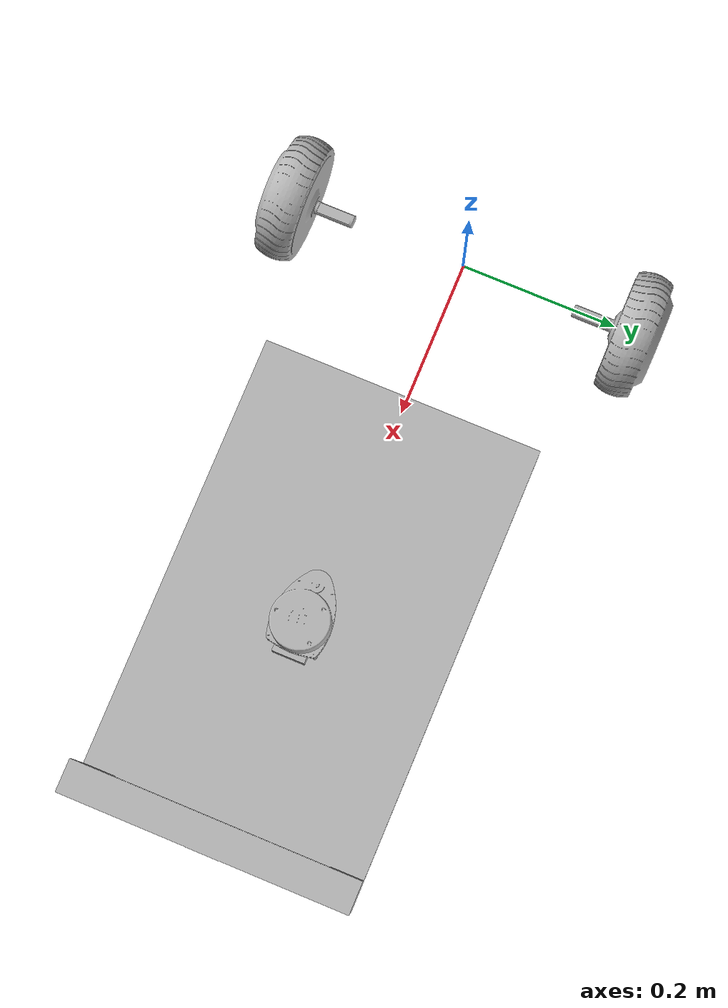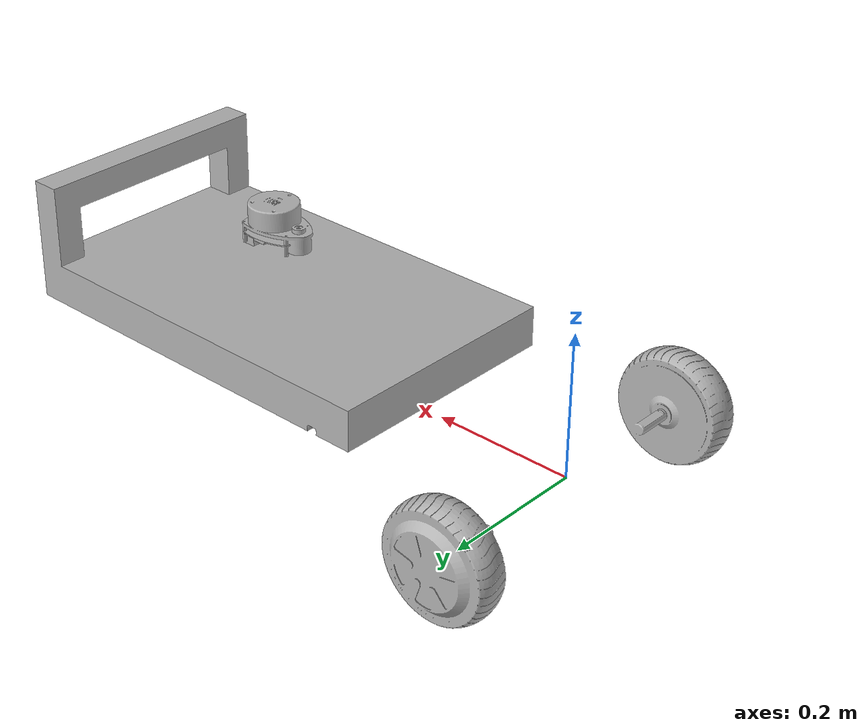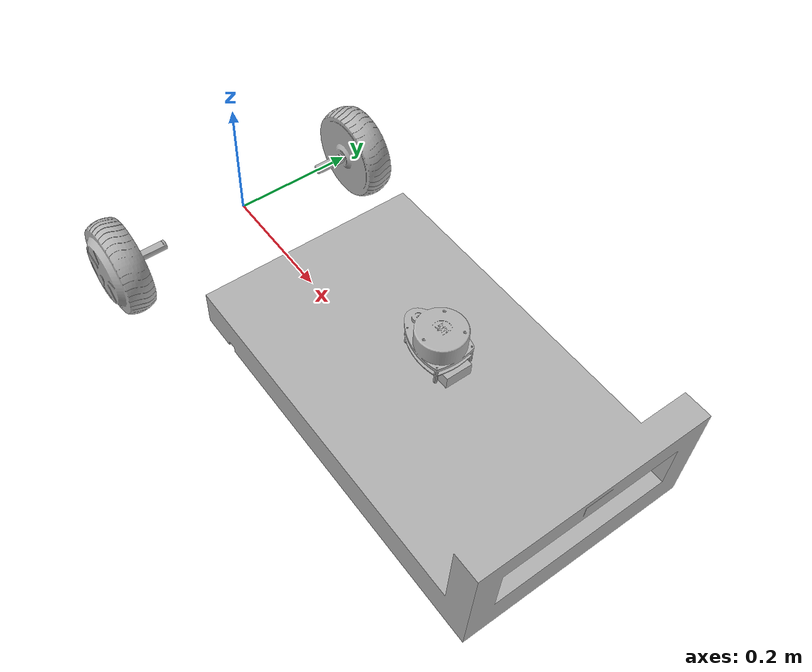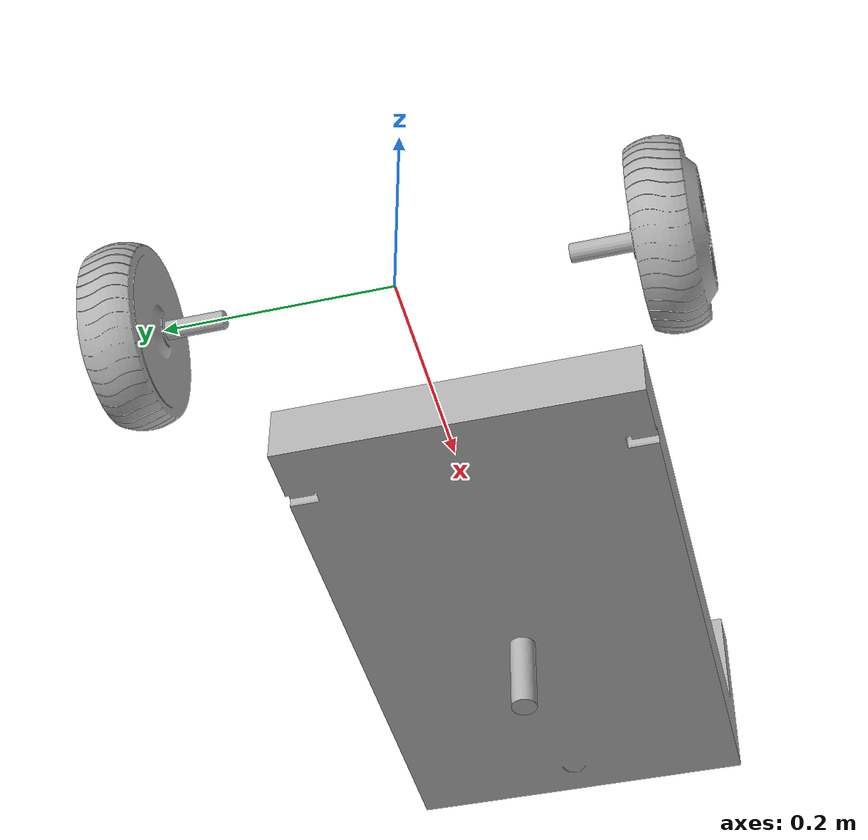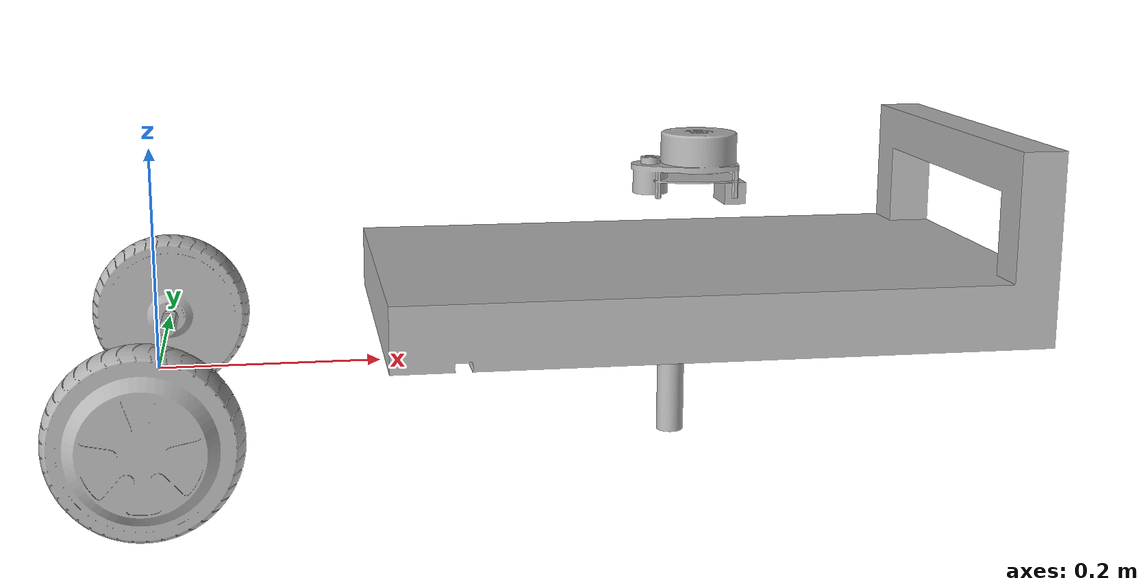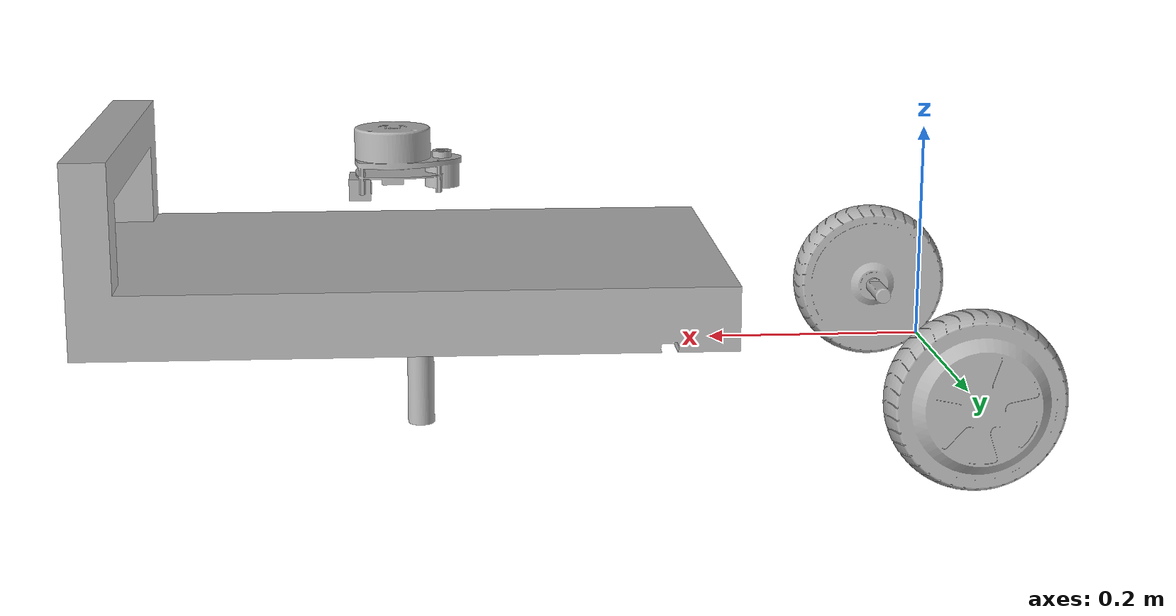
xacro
<?xml version="1.0" ?>
<robot name="mybot" xmlns:xacro="http://www.ros.org/wiki/xacro">

<xacro:include filename="$(find mybot_description)/urdf/materials.xacro" />
<xacro:include filename="$(find mybot_description)/urdf/mybot.trans" />
<xacro:include filename="$(find mybot_description)/urdf/mybot.gazebo" />
<!-- BASE LINK -->

    <link name="base_link">

    </link>

    <!-- BASE_FOOTPRINT LINK -->

    <joint name="base_footprint_joint" type="fixed">
        <parent link="base_link"/>
        <child link="base_footprint"/>
        <origin xyz="0 0 0" rpy="0 0 0"/>
    </joint>

    <link name="base_footprint">
    </link>

<joint name="chassis_joint" type="fixed">
        <parent link="base_link"/>
        <child link="chassis"/>
        <origin xyz="0.25839885705674864 2.0307340956054744e-17 0.03695407073761257"/>
    </joint>

<link name="chassis">
  <inertial>
    <origin xyz="0.25839885705674864 2.0307340956054744e-17 0.03695407073761257" rpy="0 0 0"/>
    <mass value="19.347767490394116"/>
    <inertia ixx="0.297302" iyy="0.756999" izz="0.99265" ixy="-0.0" iyz="0.0" ixz="-0.055153"/>
  </inertial>
  <visual>
    <origin xyz="0 0 0" rpy="0 0 0"/>
    <geometry>
      <mesh filename="package://mybot_description/meshes/base_link.stl" scale="0.001 0.001 0.001"/>
    </geometry>
    <material name="silver"/>
  </visual>
  <collision>
    <origin xyz="0 0 0" rpy="0 0 0"/>
    <geometry>
      <mesh filename="package://mybot_description/meshes/base_link.stl" scale="0.001 0.001 0.001"/>
    </geometry>
  </collision>
</link>

<link name="left_wheel_l">
  <inertial>
    <origin xyz="-2.487255623929074e-07 0.08085491880765591 -7.622460057191507e-06" rpy="0 0 0"/>
    <mass value="0.8909473644045303"/>
    <inertia ixx="0.001474" iyy="0.002513" izz="0.001474" ixy="-0.0" iyz="-0.0" ixz="0.0"/>
  </inertial>
  <visual>
    <origin xyz="-0.0 -0.146 -0.0" rpy="0 0 0"/>
    <geometry>
      <mesh filename="package://mybot_description/meshes/left_wheel_1.stl" scale="0.001 0.001 0.001"/>
    </geometry>
    <material name="silver"/>
  </visual>
  <collision>
    <origin xyz="-0.0 -0.146 -0.0" rpy="0 0 0"/>
    <geometry>
      <mesh filename="package://mybot_description/meshes/left_wheel_1.stl" scale="0.001 0.001 0.001"/>
    </geometry>
  </collision>
</link>

<link name="right_wheel_l">
  <inertial>
    <origin xyz="-2.4383168080722895e-07 -0.08085408001707872 -6.934637793741147e-06" rpy="0 0 0"/>
    <mass value="0.8909661209663764"/>
    <inertia ixx="0.001474" iyy="0.002514" izz="0.001474" ixy="0.0" iyz="0.0" ixz="0.0"/>
  </inertial>
  <visual>
    <origin xyz="-0.0 0.146 -0.0" rpy="0 0 0"/>
    <geometry>
      <mesh filename="package://mybot_description/meshes/right_wheel_1.stl" scale="0.001 0.001 0.001"/>
    </geometry>
    <material name="silver"/>
  </visual>
  <collision>
    <origin xyz="-0.0 0.146 -0.0" rpy="0 0 0"/>
    <geometry>
      <mesh filename="package://mybot_description/meshes/right_wheel_1.stl" scale="0.001 0.001 0.001"/>
    </geometry>
  </collision>
</link>

<link name="camera">
  <inertial>
    <origin xyz="0.010000000000000009 0.0 0.0" rpy="0 0 0"/>
    <mass value="0.1256"/>
    <inertia ixx="2.1e-05" iyy="8e-06" izz="2.1e-05" ixy="0.0" iyz="0.0" ixz="0.0"/>
  </inertial>
  <visual>
    <origin xyz="-0.5185 -0.0 -0.15" rpy="0 0 0"/>
    <geometry>
      <mesh filename="package://mybot_description/meshes/camera_1.stl" scale="0.001 0.001 0.001"/>
    </geometry>
    <material name="silver"/>
  </visual>
  <collision>
    <origin xyz="-0.5185 -0.0 -0.15" rpy="0 0 0"/>
    <geometry>
      <mesh filename="package://mybot_description/meshes/camera_1.stl" scale="0.001 0.001 0.001"/>
    </geometry>
  </collision>
</link>

<link name="caster_wheel">
  <inertial>
    <origin xyz="-5.551115123125783e-17 0.0 -0.03799999999999998" rpy="0 0 0"/>
    <mass value="0.29451054679421534"/>
    <inertia ixx="0.000153" iyy="0.000153" izz="2.3e-05" ixy="-0.0" iyz="-0.0" ixz="-0.0"/>
  </inertial>
  <visual>
    <origin xyz="-0.475 -0.0 0.003" rpy="0 0 0"/>
    <geometry>
      <mesh filename="package://mybot_description/meshes/caster_wheel_1.stl" scale="0.001 0.001 0.001"/>
    </geometry>
    <material name="silver"/>
  </visual>
  <collision>
    <origin xyz="-0.475 -0.0 0.003" rpy="0 0 0"/>
    <geometry>
      <mesh filename="package://mybot_description/meshes/caster_wheel_1.stl" scale="0.001 0.001 0.001"/>
    </geometry>
  </collision>
</link>

<link name="laser">
  <inertial>
    <origin xyz="-0.006766530116657676 9.192611113994242e-05 0.013668127732840374" rpy="0 0 0"/>
    <mass value="1.3392997077576572"/>
    <inertia ixx="0.000619" iyy="0.000967" izz="0.001105" ixy="-1e-06" iyz="3e-06" ixz="-0.000159"/>
  </inertial>
  <visual>
    <origin xyz="-0.498 -0.0 -0.169" rpy="0 0 0"/>
    <geometry>
      <mesh filename="package://mybot_description/meshes/laser_1.stl" scale="0.001 0.001 0.001"/>
    </geometry>
    <material name="silver"/>
  </visual>
  <collision>
    <origin xyz="-0.498 -0.0 -0.169" rpy="0 0 0"/>
    <geometry>
      <mesh filename="package://mybot_description/meshes/laser_1.stl" scale="0.001 0.001 0.001"/>
    </geometry>
  </collision>
</link>

<joint name="left_wheel" type="continuous">
  <origin xyz="0.0 0.146 0.0" rpy="0 0 0"/>
  <parent link="base_link"/>
  <child link="left_wheel_l"/>
  <axis xyz="0.0 1.0 0.0"/>
</joint>

<joint name="right_wheel" type="continuous">
  <origin xyz="0.0 -0.146 0.0" rpy="0 0 0"/>
  <parent link="base_link"/>
  <child link="right_wheel_l"/>
  <axis xyz="0.0 1.0 0.0"/>
</joint>

<joint name="camera_j" type="fixed">
  <origin xyz="0.5185 0.0 0.15" rpy="0 0 0"/>
  <parent link="base_link"/>
  <child link="camera"/>
</joint>

<joint name="caster_wheel_j" type="fixed">
  <origin xyz="0.475 0.0 -0.003" rpy="0 0 0"/>
  <parent link="base_link"/>
  <child link="caster_wheel"/>
</joint>

<joint name="laser_j" type="fixed">
  <origin xyz="0.498 0.0 0.169" rpy="0 0 0"/>
  <parent link="base_link"/>
  <child link="laser"/>
</joint>

</robot>

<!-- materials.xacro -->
<robot name="mybot" xmlns:xacro="http://www.ros.org/wiki/xacro" >

<material name="silver">
  <color rgba="0.700 0.700 0.700 1.000"/>
</material>

</robot>

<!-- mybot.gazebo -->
<robot name="mybot" xmlns:xacro="http://www.ros.org/wiki/xacro" >

<xacro:property name="body_color" value="Gazebo/Silver" />

<gazebo>
  <plugin name="control" filename="libgazebo_ros_control.so"/>
</gazebo>
<gazebo reference="base_link">
  <material>${body_color}</material>
  <mu1>0.2</mu1>
  <mu2>0.2</mu2>
  <selfCollide>true</selfCollide>
  <gravity>true</gravity>
</gazebo>

<gazebo reference="left_wheel">
  <material>${body_color}</material>
  <mu1>0.2</mu1>
  <mu2>0.2</mu2>
  <selfCollide>true</selfCollide>
</gazebo>

<gazebo reference="right_wheel">
  <material>${body_color}</material>
  <mu1>0.2</mu1>
  <mu2>0.2</mu2>
  <selfCollide>true</selfCollide>
</gazebo>

<gazebo reference="camera">
  <material>${body_color}</material>
  <mu1>0.2</mu1>
  <mu2>0.2</mu2>
  <selfCollide>true</selfCollide>
</gazebo>

<gazebo reference="caster_wheel">
  <material>${body_color}</material>
  <mu1>0.00001</mu1>
  <mu2>0.00001</mu2>
  <selfCollide>true</selfCollide>
</gazebo>

<gazebo reference="laser">
  <material>${body_color}</material>
  <mu1>0.2</mu1>
  <mu2>0.2</mu2>
  <selfCollide>true</selfCollide>
</gazebo>
<gazebo>
  <plugin name="differential_drive_controller" filename="libgazebo_ros_diff_drive.so">

    <!-- Plugin update rate in Hz -->
    <updateRate>50</updateRate>

    <!-- Name of left joint, defaults to `left_joint` -->
    <leftJoint>left_wheel_j</leftJoint>

    <!-- Name of right joint, defaults to `right_joint` -->
    <rightJoint>right_wheel_j</rightJoint>

    <!-- The distance from the center of one wheel to the other, in meters, defaults to 0.34 m -->
    <wheelSeparation>0.225</wheelSeparation>

    <!-- Diameter of the wheels, in meters, defaults to 0.15 m -->
    <wheelDiameter>0.161</wheelDiameter>

    <!-- Wheel acceleration, in rad/s^2, defaults to 0.0 rad/s^2 -->
    <wheelAcceleration>1.0</wheelAcceleration>

    <!-- Maximum torque which the wheels can produce, in Nm, defaults to 5 Nm -->
    <wheelTorque>20</wheelTorque>

    <!-- Topic to receive geometry_msgs/Twist message commands, defaults to `cmd_vel` -->
    <commandTopic>cmd_vel</commandTopic>

    <!-- Topic to publish nav_msgs/Odometry messages, defaults to `odom` -->
    <odometryTopic>odom</odometryTopic>

    <!-- Odometry frame, defaults to `odom` -->
    <odometryFrame>odom</odometryFrame>

    <!-- Robot frame to calculate odometry from, defaults to `base_footprint` -->
    <robotBaseFrame>base_link</robotBaseFrame>

    <!-- Odometry source, 0 for ENCODER, 1 for WORLD, defaults to WORLD -->
    <odometrySource>1</odometrySource>

    <!-- Set to true to publish transforms for the wheel links, defaults to false -->
    <publishWheelTF>true</publishWheelTF>

    <!-- Set to true to publish transforms for the odometry, defaults to true -->
    <publishOdom>true</publishOdom>

    <!-- Set to true to publish sensor_msgs/JointState on /joint_states for the wheel joints, defaults to false -->
    <publishWheelJointState>true</publishWheelJointState>

    <!-- Set to true to swap right and left wheels, defaults to true -->
    <legacyMode>false</legacyMode>

  </plugin>
  </gazebo>
    <gazebo reference="laser">
    <sensor type="ray" name="lidar">
      <pose>0 0 0 0 0 0</pose>
      <visualize>true</visualize>
      <update_rate>10</update_rate>
      <ray>
        <scan>
          <horizontal>
            <samples>360</samples>
            <resolution>1</resolution>
            <min_angle>-3.14</min_angle>
            <max_angle>3.14</max_angle>
          </horizontal>
        </scan>
        <range>
          <min>0.10</min>
          <max>30.0</max>
          <resolution>0.01</resolution>
        </range>
        <noise>
          <type>gaussian</type>
          <mean>0.0</mean>
          <stddev>0.01</stddev>
        </noise>
      </ray>
      <plugin name="laser_controller" filename="libgazebo_ros_laser.so">
        <topicName>sensor_msgs/LaserScan</topicName>
        <frameName>laser</frameName>
      </plugin>
    </sensor>
  </gazebo>

  <gazebo reference="camera">
        <material>Gazebo/Red</material>

        <sensor name="camera" type="camera">
            <pose> 0 0 0 0 0 0 </pose>
            <visualize>true</visualize>
            <update_rate>10</update_rate>
            <camera>
                <horizontal_fov>1.089</horizontal_fov>
                <image>
                    <format>R8G8B8</format>
                    <width>640</width>
                    <height>480</height>
                </image>
                <clip>
                    <near>0.05</near>
                    <far>8.0</far>
                </clip>
            </camera>
            <plugin name="camera_controller" filename="libgazebo_ros_camera.so">
                <frame_name>camera</frame_name>
            </plugin>
        </sensor>
    </gazebo>

</robot>
